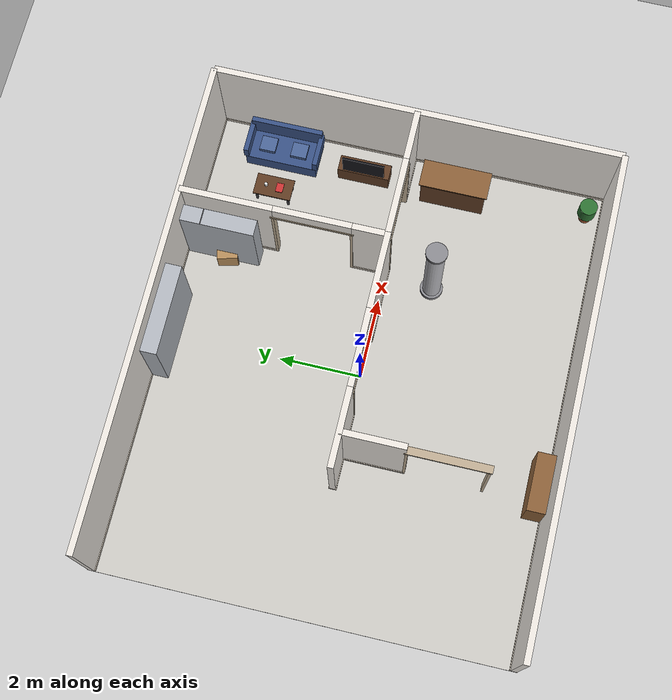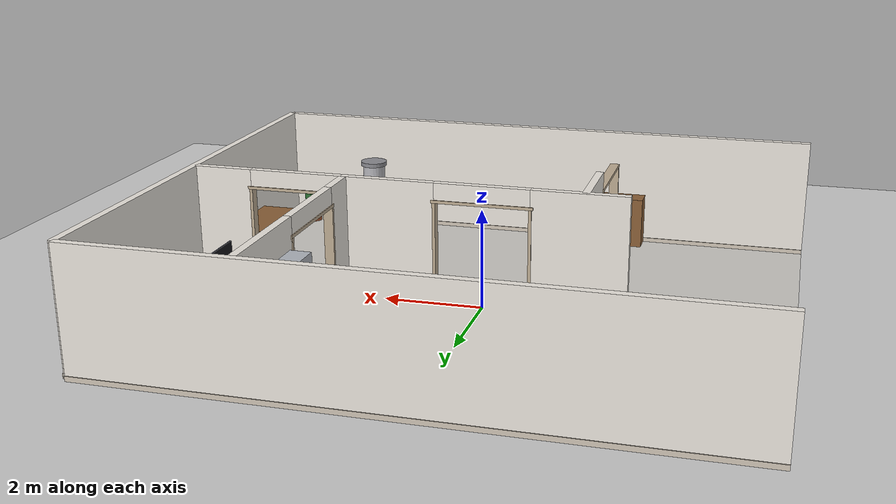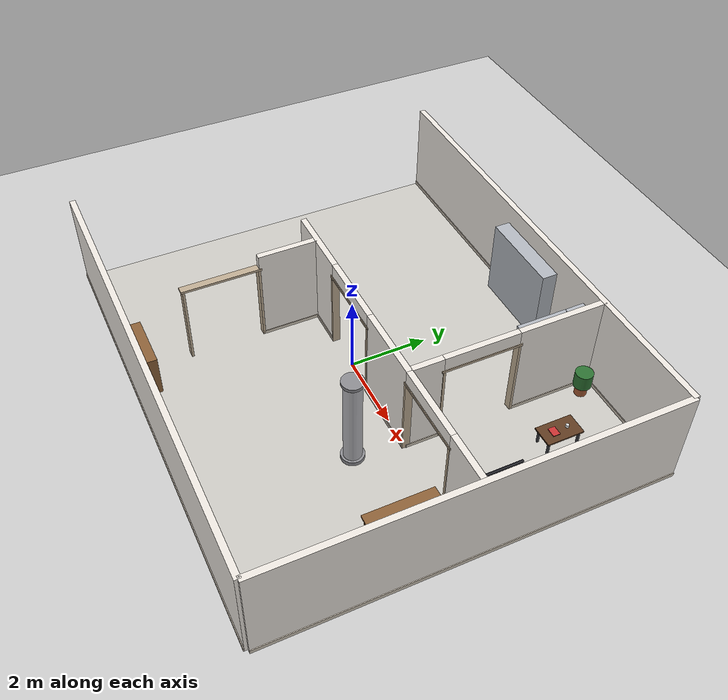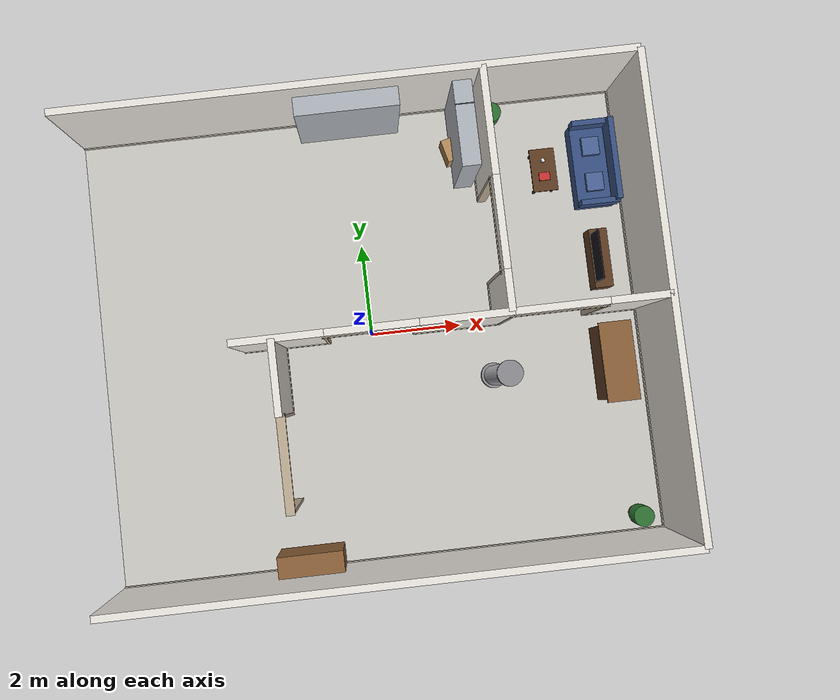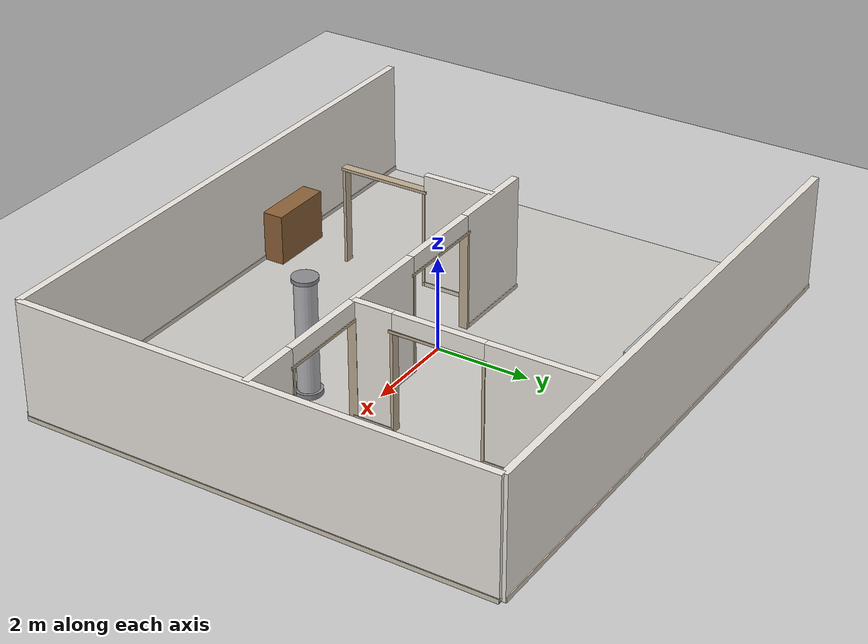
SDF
<sdf version="1.4">
 <world name="complex_indoor">
  <include><uri>model://sun</uri></include>
  <include><uri>model://ground_plane</uri></include>
  <model name="floor_tile">
   <static>true</static>
   <pose>0 0 0.005 0 0 0</pose>
   <link name="link">
    <collision name="collision"><geometry><box><size>12.0 10.0 0.01</size></box></geometry></collision>
    <visual name="visual">
     <geometry><box><size>12.0 10.0 0.01</size></box></geometry>
     <material>
      <ambient>0.80 0.79 0.77 1</ambient>
      <diffuse>0.80 0.79 0.77 1</diffuse>
      <specular>0.05 0.05 0.05 1</specular>
     </material>
    </visual>
   </link>
  </model>
  <model name="wall_north_0">
   <static>true</static>
   <pose>0.000 5.000 1.250 0 0 0.0000</pose>
   <link name="link">
    <collision name="collision"><geometry><box><size>12.000 0.150 2.500</size></box></geometry></collision>
    <visual name="visual">
     <geometry><box><size>12.000 0.150 2.500</size></box></geometry>
     <material>
      <ambient>0.93 0.91 0.88 1</ambient>
      <diffuse>0.93 0.91 0.88 1</diffuse>
      <specular>0.1 0.1 0.1 1</specular>
     </material>
    </visual>
   </link>
  </model>
  <model name="wall_north_base_0">
   <static>true</static>
   <pose>0.000 5.000 0.050 0 0 0.0000</pose>
   <link name="link">
    <collision name="collision"><geometry><box><size>12.000 0.190 0.100</size></box></geometry></collision>
    <visual name="visual">
     <geometry><box><size>12.000 0.190 0.100</size></box></geometry>
     <material>
      <ambient>0.82 0.78 0.72 1</ambient>
      <diffuse>0.82 0.78 0.72 1</diffuse>
      <specular>0.1 0.1 0.1 1</specular>
     </material>
    </visual>
   </link>
  </model>
  <model name="wall_south_0">
   <static>true</static>
   <pose>0.000 -5.000 1.250 0 0 0.0000</pose>
   <link name="link">
    <collision name="collision"><geometry><box><size>12.000 0.150 2.500</size></box></geometry></collision>
    <visual name="visual">
     <geometry><box><size>12.000 0.150 2.500</size></box></geometry>
     <material>
      <ambient>0.93 0.91 0.88 1</ambient>
      <diffuse>0.93 0.91 0.88 1</diffuse>
      <specular>0.1 0.1 0.1 1</specular>
     </material>
    </visual>
   </link>
  </model>
  <model name="wall_south_base_0">
   <static>true</static>
   <pose>0.000 -5.000 0.050 0 0 0.0000</pose>
   <link name="link">
    <collision name="collision"><geometry><box><size>12.000 0.190 0.100</size></box></geometry></collision>
    <visual name="visual">
     <geometry><box><size>12.000 0.190 0.100</size></box></geometry>
     <material>
      <ambient>0.82 0.78 0.72 1</ambient>
      <diffuse>0.82 0.78 0.72 1</diffuse>
      <specular>0.1 0.1 0.1 1</specular>
     </material>
    </visual>
   </link>
  </model>
  <model name="wall_east_0">
   <static>true</static>
   <pose>6.000 0.000 1.250 0 0 0.0000</pose>
   <link name="link">
    <collision name="collision"><geometry><box><size>0.150 10.000 2.500</size></box></geometry></collision>
    <visual name="visual">
     <geometry><box><size>0.150 10.000 2.500</size></box></geometry>
     <material>
      <ambient>0.93 0.91 0.88 1</ambient>
      <diffuse>0.93 0.91 0.88 1</diffuse>
      <specular>0.1 0.1 0.1 1</specular>
     </material>
    </visual>
   </link>
  </model>
  <model name="wall_east_base_0">
   <static>true</static>
   <pose>6.000 0.000 0.050 0 0 0.0000</pose>
   <link name="link">
    <collision name="collision"><geometry><box><size>0.190 10.000 0.100</size></box></geometry></collision>
    <visual name="visual">
     <geometry><box><size>0.190 10.000 0.100</size></box></geometry>
     <material>
      <ambient>0.82 0.78 0.72 1</ambient>
      <diffuse>0.82 0.78 0.72 1</diffuse>
      <specular>0.1 0.1 0.1 1</specular>
     </material>
    </visual>
   </link>
  </model>
  <model name="wall_split_2">
   <static>true</static>
   <pose>-1.900 0.000 1.250 0 0 0.0000</pose>
   <link name="link">
    <collision name="collision"><geometry><box><size>1.900 0.150 2.500</size></box></geometry></collision>
    <visual name="visual">
     <geometry><box><size>1.900 0.150 2.500</size></box></geometry>
     <material>
      <ambient>0.93 0.91 0.88 1</ambient>
      <diffuse>0.93 0.91 0.88 1</diffuse>
      <specular>0.1 0.1 0.1 1</specular>
     </material>
    </visual>
   </link>
  </model>
  <model name="wall_split_base_2">
   <static>true</static>
   <pose>-1.900 0.000 0.050 0 0 0.0000</pose>
   <link name="link">
    <collision name="collision"><geometry><box><size>1.900 0.190 0.100</size></box></geometry></collision>
    <visual name="visual">
     <geometry><box><size>1.900 0.190 0.100</size></box></geometry>
     <material>
      <ambient>0.82 0.78 0.72 1</ambient>
      <diffuse>0.82 0.78 0.72 1</diffuse>
      <specular>0.1 0.1 0.1 1</specular>
     </material>
    </visual>
   </link>
  </model>
  <model name="wall_split_lintel_3">
   <static>true</static>
   <pose>0.000 0.000 2.300 0 0 0.0000</pose>
   <link name="link">
    <collision name="collision"><geometry><box><size>1.900 0.150 0.400</size></box></geometry></collision>
    <visual name="visual">
     <geometry><box><size>1.900 0.150 0.400</size></box></geometry>
     <material>
      <ambient>0.93 0.91 0.88 1</ambient>
      <diffuse>0.93 0.91 0.88 1</diffuse>
      <specular>0.1 0.1 0.1 1</specular>
     </material>
    </visual>
   </link>
  </model>
  <model name="wall_split_frame_3_l">
   <static>true</static>
   <pose>-0.950 0.000 1.050 0 0 0.0000</pose>
   <link name="link">
    <collision name="collision"><geometry><box><size>0.060 0.190 2.100</size></box></geometry></collision>
    <visual name="visual">
     <geometry><box><size>0.060 0.190 2.100</size></box></geometry>
     <material>
      <ambient>0.75 0.68 0.58 1</ambient>
      <diffuse>0.75 0.68 0.58 1</diffuse>
      <specular>0.1 0.1 0.1 1</specular>
     </material>
    </visual>
   </link>
  </model>
  <model name="wall_split_frame_3_r">
   <static>true</static>
   <pose>0.950 0.000 1.050 0 0 0.0000</pose>
   <link name="link">
    <collision name="collision"><geometry><box><size>0.060 0.190 2.100</size></box></geometry></collision>
    <visual name="visual">
     <geometry><box><size>0.060 0.190 2.100</size></box></geometry>
     <material>
      <ambient>0.75 0.68 0.58 1</ambient>
      <diffuse>0.75 0.68 0.58 1</diffuse>
      <specular>0.1 0.1 0.1 1</specular>
     </material>
    </visual>
   </link>
  </model>
  <model name="wall_split_frame_3_t">
   <static>true</static>
   <pose>0.000 0.000 2.130 0 0 0.0000</pose>
   <link name="link">
    <collision name="collision"><geometry><box><size>2.020 0.190 0.060</size></box></geometry></collision>
    <visual name="visual">
     <geometry><box><size>2.020 0.190 0.060</size></box></geometry>
     <material>
      <ambient>0.75 0.68 0.58 1</ambient>
      <diffuse>0.75 0.68 0.58 1</diffuse>
      <specular>0.1 0.1 0.1 1</specular>
     </material>
    </visual>
   </link>
  </model>
  <model name="wall_split_4">
   <static>true</static>
   <pose>1.900 0.000 1.250 0 0 0.0000</pose>
   <link name="link">
    <collision name="collision"><geometry><box><size>1.900 0.150 2.500</size></box></geometry></collision>
    <visual name="visual">
     <geometry><box><size>1.900 0.150 2.500</size></box></geometry>
     <material>
      <ambient>0.93 0.91 0.88 1</ambient>
      <diffuse>0.93 0.91 0.88 1</diffuse>
      <specular>0.1 0.1 0.1 1</specular>
     </material>
    </visual>
   </link>
  </model>
  <model name="wall_split_base_4">
   <static>true</static>
   <pose>1.900 0.000 0.050 0 0 0.0000</pose>
   <link name="link">
    <collision name="collision"><geometry><box><size>1.900 0.190 0.100</size></box></geometry></collision>
    <visual name="visual">
     <geometry><box><size>1.900 0.190 0.100</size></box></geometry>
     <material>
      <ambient>0.82 0.78 0.72 1</ambient>
      <diffuse>0.82 0.78 0.72 1</diffuse>
      <specular>0.1 0.1 0.1 1</specular>
     </material>
    </visual>
   </link>
  </model>
  <model name="wall_split_lintel_5">
   <static>true</static>
   <pose>3.800 0.000 2.300 0 0 0.0000</pose>
   <link name="link">
    <collision name="collision"><geometry><box><size>1.900 0.150 0.400</size></box></geometry></collision>
    <visual name="visual">
     <geometry><box><size>1.900 0.150 0.400</size></box></geometry>
     <material>
      <ambient>0.93 0.91 0.88 1</ambient>
      <diffuse>0.93 0.91 0.88 1</diffuse>
      <specular>0.1 0.1 0.1 1</specular>
     </material>
    </visual>
   </link>
  </model>
  <model name="wall_split_frame_5_l">
   <static>true</static>
   <pose>2.850 0.000 1.050 0 0 0.0000</pose>
   <link name="link">
    <collision name="collision"><geometry><box><size>0.060 0.190 2.100</size></box></geometry></collision>
    <visual name="visual">
     <geometry><box><size>0.060 0.190 2.100</size></box></geometry>
     <material>
      <ambient>0.75 0.68 0.58 1</ambient>
      <diffuse>0.75 0.68 0.58 1</diffuse>
      <specular>0.1 0.1 0.1 1</specular>
     </material>
    </visual>
   </link>
  </model>
  <model name="wall_split_frame_5_r">
   <static>true</static>
   <pose>4.750 0.000 1.050 0 0 0.0000</pose>
   <link name="link">
    <collision name="collision"><geometry><box><size>0.060 0.190 2.100</size></box></geometry></collision>
    <visual name="visual">
     <geometry><box><size>0.060 0.190 2.100</size></box></geometry>
     <material>
      <ambient>0.75 0.68 0.58 1</ambient>
      <diffuse>0.75 0.68 0.58 1</diffuse>
      <specular>0.1 0.1 0.1 1</specular>
     </material>
    </visual>
   </link>
  </model>
  <model name="wall_split_frame_5_t">
   <static>true</static>
   <pose>3.800 0.000 2.130 0 0 0.0000</pose>
   <link name="link">
    <collision name="collision"><geometry><box><size>2.020 0.190 0.060</size></box></geometry></collision>
    <visual name="visual">
     <geometry><box><size>2.020 0.190 0.060</size></box></geometry>
     <material>
      <ambient>0.75 0.68 0.58 1</ambient>
      <diffuse>0.75 0.68 0.58 1</diffuse>
      <specular>0.1 0.1 0.1 1</specular>
     </material>
    </visual>
   </link>
  </model>
  <model name="wall_split_6">
   <static>true</static>
   <pose>5.375 0.000 1.250 0 0 0.0000</pose>
   <link name="link">
    <collision name="collision"><geometry><box><size>1.250 0.150 2.500</size></box></geometry></collision>
    <visual name="visual">
     <geometry><box><size>1.250 0.150 2.500</size></box></geometry>
     <material>
      <ambient>0.93 0.91 0.88 1</ambient>
      <diffuse>0.93 0.91 0.88 1</diffuse>
      <specular>0.1 0.1 0.1 1</specular>
     </material>
    </visual>
   </link>
  </model>
  <model name="wall_split_base_6">
   <static>true</static>
   <pose>5.375 0.000 0.050 0 0 0.0000</pose>
   <link name="link">
    <collision name="collision"><geometry><box><size>1.250 0.190 0.100</size></box></geometry></collision>
    <visual name="visual">
     <geometry><box><size>1.250 0.190 0.100</size></box></geometry>
     <material>
      <ambient>0.82 0.78 0.72 1</ambient>
      <diffuse>0.82 0.78 0.72 1</diffuse>
      <specular>0.1 0.1 0.1 1</specular>
     </material>
    </visual>
   </link>
  </model>
  <model name="wall_north_div2_0">
   <static>true</static>
   <pose>2.800 0.425 1.250 0 0 0.0000</pose>
   <link name="link">
    <collision name="collision"><geometry><box><size>0.150 0.850 2.500</size></box></geometry></collision>
    <visual name="visual">
     <geometry><box><size>0.150 0.850 2.500</size></box></geometry>
     <material>
      <ambient>0.93 0.91 0.88 1</ambient>
      <diffuse>0.93 0.91 0.88 1</diffuse>
      <specular>0.1 0.1 0.1 1</specular>
     </material>
    </visual>
   </link>
  </model>
  <model name="wall_north_div2_base_0">
   <static>true</static>
   <pose>2.800 0.425 0.050 0 0 0.0000</pose>
   <link name="link">
    <collision name="collision"><geometry><box><size>0.190 0.850 0.100</size></box></geometry></collision>
    <visual name="visual">
     <geometry><box><size>0.190 0.850 0.100</size></box></geometry>
     <material>
      <ambient>0.82 0.78 0.72 1</ambient>
      <diffuse>0.82 0.78 0.72 1</diffuse>
      <specular>0.1 0.1 0.1 1</specular>
     </material>
    </visual>
   </link>
  </model>
  <model name="wall_north_div2_lintel_1">
   <static>true</static>
   <pose>2.800 1.800 2.300 0 0 0.0000</pose>
   <link name="link">
    <collision name="collision"><geometry><box><size>0.150 1.900 0.400</size></box></geometry></collision>
    <visual name="visual">
     <geometry><box><size>0.150 1.900 0.400</size></box></geometry>
     <material>
      <ambient>0.93 0.91 0.88 1</ambient>
      <diffuse>0.93 0.91 0.88 1</diffuse>
      <specular>0.1 0.1 0.1 1</specular>
     </material>
    </visual>
   </link>
  </model>
  <model name="wall_north_div2_frame_1_b">
   <static>true</static>
   <pose>2.800 0.850 1.050 0 0 0.0000</pose>
   <link name="link">
    <collision name="collision"><geometry><box><size>0.190 0.060 2.100</size></box></geometry></collision>
    <visual name="visual">
     <geometry><box><size>0.190 0.060 2.100</size></box></geometry>
     <material>
      <ambient>0.75 0.68 0.58 1</ambient>
      <diffuse>0.75 0.68 0.58 1</diffuse>
      <specular>0.1 0.1 0.1 1</specular>
     </material>
    </visual>
   </link>
  </model>
  <model name="wall_north_div2_frame_1_t">
   <static>true</static>
   <pose>2.800 2.750 1.050 0 0 0.0000</pose>
   <link name="link">
    <collision name="collision"><geometry><box><size>0.190 0.060 2.100</size></box></geometry></collision>
    <visual name="visual">
     <geometry><box><size>0.190 0.060 2.100</size></box></geometry>
     <material>
      <ambient>0.75 0.68 0.58 1</ambient>
      <diffuse>0.75 0.68 0.58 1</diffuse>
      <specular>0.1 0.1 0.1 1</specular>
     </material>
    </visual>
   </link>
  </model>
  <model name="wall_north_div2_frame_1_top">
   <static>true</static>
   <pose>2.800 1.800 2.130 0 0 0.0000</pose>
   <link name="link">
    <collision name="collision"><geometry><box><size>0.190 2.020 0.060</size></box></geometry></collision>
    <visual name="visual">
     <geometry><box><size>0.190 2.020 0.060</size></box></geometry>
     <material>
      <ambient>0.75 0.68 0.58 1</ambient>
      <diffuse>0.75 0.68 0.58 1</diffuse>
      <specular>0.1 0.1 0.1 1</specular>
     </material>
    </visual>
   </link>
  </model>
  <model name="wall_north_div2_2">
   <static>true</static>
   <pose>2.800 3.875 1.250 0 0 0.0000</pose>
   <link name="link">
    <collision name="collision"><geometry><box><size>0.150 2.250 2.500</size></box></geometry></collision>
    <visual name="visual">
     <geometry><box><size>0.150 2.250 2.500</size></box></geometry>
     <material>
      <ambient>0.93 0.91 0.88 1</ambient>
      <diffuse>0.93 0.91 0.88 1</diffuse>
      <specular>0.1 0.1 0.1 1</specular>
     </material>
    </visual>
   </link>
  </model>
  <model name="wall_north_div2_base_2">
   <static>true</static>
   <pose>2.800 3.875 0.050 0 0 0.0000</pose>
   <link name="link">
    <collision name="collision"><geometry><box><size>0.190 2.250 0.100</size></box></geometry></collision>
    <visual name="visual">
     <geometry><box><size>0.190 2.250 0.100</size></box></geometry>
     <material>
      <ambient>0.82 0.78 0.72 1</ambient>
      <diffuse>0.82 0.78 0.72 1</diffuse>
      <specular>0.1 0.1 0.1 1</specular>
     </material>
    </visual>
   </link>
  </model>
  <model name="wall_south_div_frame_1_b">
   <static>true</static>
   <pose>-2.000 -3.450 1.050 0 0 0.0000</pose>
   <link name="link">
    <collision name="collision"><geometry><box><size>0.190 0.060 2.100</size></box></geometry></collision>
    <visual name="visual">
     <geometry><box><size>0.190 0.060 2.100</size></box></geometry>
     <material>
      <ambient>0.75 0.68 0.58 1</ambient>
      <diffuse>0.75 0.68 0.58 1</diffuse>
      <specular>0.1 0.1 0.1 1</specular>
     </material>
    </visual>
   </link>
  </model>
  <model name="wall_south_div_frame_1_t">
   <static>true</static>
   <pose>-2.000 -1.550 1.050 0 0 0.0000</pose>
   <link name="link">
    <collision name="collision"><geometry><box><size>0.190 0.060 2.100</size></box></geometry></collision>
    <visual name="visual">
     <geometry><box><size>0.190 0.060 2.100</size></box></geometry>
     <material>
      <ambient>0.75 0.68 0.58 1</ambient>
      <diffuse>0.75 0.68 0.58 1</diffuse>
      <specular>0.1 0.1 0.1 1</specular>
     </material>
    </visual>
   </link>
  </model>
  <model name="wall_south_div_frame_1_top">
   <static>true</static>
   <pose>-2.000 -2.500 2.130 0 0 0.0000</pose>
   <link name="link">
    <collision name="collision"><geometry><box><size>0.190 2.020 0.060</size></box></geometry></collision>
    <visual name="visual">
     <geometry><box><size>0.190 2.020 0.060</size></box></geometry>
     <material>
      <ambient>0.75 0.68 0.58 1</ambient>
      <diffuse>0.75 0.68 0.58 1</diffuse>
      <specular>0.1 0.1 0.1 1</specular>
     </material>
    </visual>
   </link>
  </model>
  <model name="wall_south_div_2">
   <static>true</static>
   <pose>-2.000 -0.775 1.250 0 0 0.0000</pose>
   <link name="link">
    <collision name="collision"><geometry><box><size>0.150 1.550 2.500</size></box></geometry></collision>
    <visual name="visual">
     <geometry><box><size>0.150 1.550 2.500</size></box></geometry>
     <material>
      <ambient>0.93 0.91 0.88 1</ambient>
      <diffuse>0.93 0.91 0.88 1</diffuse>
      <specular>0.1 0.1 0.1 1</specular>
     </material>
    </visual>
   </link>
  </model>
  <model name="wall_south_div_base_2">
   <static>true</static>
   <pose>-2.000 -0.775 0.050 0 0 0.0000</pose>
   <link name="link">
    <collision name="collision"><geometry><box><size>0.190 1.550 0.100</size></box></geometry></collision>
    <visual name="visual">
     <geometry><box><size>0.190 1.550 0.100</size></box></geometry>
     <material>
      <ambient>0.82 0.78 0.72 1</ambient>
      <diffuse>0.82 0.78 0.72 1</diffuse>
      <specular>0.1 0.1 0.1 1</specular>
     </material>
    </visual>
   </link>
  </model>
  <model name="rack_c_right">
   <static>true</static>
   <pose>2.420 4.000 1.000 0 0 0.0000</pose>
   <link name="link">
    <collision name="collision"><geometry><box><size>0.400 1.800 2.000</size></box></geometry></collision>
    <visual name="visual">
     <geometry><box><size>0.400 1.800 2.000</size></box></geometry>
     <material>
      <ambient>0.70 0.72 0.75 1</ambient>
      <diffuse>0.70 0.72 0.75 1</diffuse>
      <specular>0.1 0.1 0.1 1</specular>
     </material>
    </visual>
   </link>
  </model>
  <model name="rack_c_right_s1">
   <static>true</static>
   <pose>2.420 3.600 0.550 0 0 0.0000</pose>
   <link name="link">
    <collision name="collision"><geometry><box><size>0.380 0.020 1.900</size></box></geometry></collision>
    <visual name="visual">
     <geometry><box><size>0.380 0.020 1.900</size></box></geometry>
     <material>
      <ambient>0.28 0.28 0.30 1</ambient>
      <diffuse>0.28 0.28 0.30 1</diffuse>
      <specular>0.1 0.1 0.1 1</specular>
     </material>
    </visual>
   </link>
  </model>
  <model name="rack_c_right_s2">
   <static>true</static>
   <pose>2.420 4.400 1.050 0 0 0.0000</pose>
   <link name="link">
    <collision name="collision"><geometry><box><size>0.380 0.020 1.900</size></box></geometry></collision>
    <visual name="visual">
     <geometry><box><size>0.380 0.020 1.900</size></box></geometry>
     <material>
      <ambient>0.28 0.28 0.30 1</ambient>
      <diffuse>0.28 0.28 0.30 1</diffuse>
      <specular>0.1 0.1 0.1 1</specular>
     </material>
    </visual>
   </link>
  </model>
  <model name="box_c_r1">
   <static>true</static>
   <pose>2.420 3.800 0.680 0 0 0.0000</pose>
   <link name="link">
    <collision name="collision"><geometry><box><size>0.320 0.360 0.240</size></box></geometry></collision>
    <visual name="visual">
     <geometry><box><size>0.320 0.360 0.240</size></box></geometry>
     <material>
      <ambient>0.72 0.56 0.36 1</ambient>
      <diffuse>0.72 0.56 0.36 1</diffuse>
      <specular>0.1 0.1 0.1 1</specular>
     </material>
    </visual>
   </link>
  </model>
  <model name="box_c_r2">
   <static>true</static>
   <pose>2.420 4.200 1.180 0 0 0.0000</pose>
   <link name="link">
    <collision name="collision"><geometry><box><size>0.320 0.360 0.240</size></box></geometry></collision>
    <visual name="visual">
     <geometry><box><size>0.320 0.360 0.240</size></box></geometry>
     <material>
      <ambient>0.70 0.55 0.35 1</ambient>
      <diffuse>0.70 0.55 0.35 1</diffuse>
      <specular>0.1 0.1 0.1 1</specular>
     </material>
    </visual>
   </link>
  </model>
  <model name="rack_c_back">
   <static>true</static>
   <pose>0.000 4.720 1.000 0 0 0.0000</pose>
   <link name="link">
    <collision name="collision"><geometry><box><size>2.200 0.400 2.000</size></box></geometry></collision>
    <visual name="visual">
     <geometry><box><size>2.200 0.400 2.000</size></box></geometry>
     <material>
      <ambient>0.70 0.72 0.75 1</ambient>
      <diffuse>0.70 0.72 0.75 1</diffuse>
      <specular>0.1 0.1 0.1 1</specular>
     </material>
    </visual>
   </link>
  </model>
  <model name="rack_c_back_s1">
   <static>true</static>
   <pose>0.000 4.720 0.900 0 0 0.0000</pose>
   <link name="link">
    <collision name="collision"><geometry><box><size>2.160 0.380 0.020</size></box></geometry></collision>
    <visual name="visual">
     <geometry><box><size>2.160 0.380 0.020</size></box></geometry>
     <material>
      <ambient>0.28 0.28 0.30 1</ambient>
      <diffuse>0.28 0.28 0.30 1</diffuse>
      <specular>0.1 0.1 0.1 1</specular>
     </material>
    </visual>
   </link>
  </model>
  <model name="crate_c_corner">
   <static>true</static>
   <pose>2.300 3.900 0.250 0 0 0.2500</pose>
   <link name="link">
    <collision name="collision"><geometry><box><size>0.500 0.500 0.500</size></box></geometry></collision>
    <visual name="visual">
     <geometry><box><size>0.500 0.500 0.500</size></box></geometry>
     <material>
      <ambient>0.72 0.56 0.36 1</ambient>
      <diffuse>0.72 0.56 0.36 1</diffuse>
      <specular>0.1 0.1 0.1 1</specular>
     </material>
    </visual>
   </link>
  </model>
  <model name="sofa_b_seat">
   <static>true</static>
   <pose>5.300 3.200 0.210 0 0 0.0000</pose>
   <link name="link">
    <collision name="collision"><geometry><box><size>0.850 1.800 0.420</size></box></geometry></collision>
    <visual name="visual">
     <geometry><box><size>0.850 1.800 0.420</size></box></geometry>
     <material>
      <ambient>0.22 0.32 0.52 1</ambient>
      <diffuse>0.22 0.32 0.52 1</diffuse>
      <specular>0.1 0.1 0.1 1</specular>
     </material>
    </visual>
   </link>
  </model>
  <model name="sofa_b_back">
   <static>true</static>
   <pose>5.680 3.200 0.670 0 0 0.0000</pose>
   <link name="link">
    <collision name="collision"><geometry><box><size>0.120 1.800 0.500</size></box></geometry></collision>
    <visual name="visual">
     <geometry><box><size>0.120 1.800 0.500</size></box></geometry>
     <material>
      <ambient>0.22 0.32 0.52 1</ambient>
      <diffuse>0.22 0.32 0.52 1</diffuse>
      <specular>0.1 0.1 0.1 1</specular>
     </material>
    </visual>
   </link>
  </model>
  <model name="sofa_b_arm_l">
   <static>true</static>
   <pose>5.300 2.320 0.580 0 0 0.0000</pose>
   <link name="link">
    <collision name="collision"><geometry><box><size>0.850 0.120 0.320</size></box></geometry></collision>
    <visual name="visual">
     <geometry><box><size>0.850 0.120 0.320</size></box></geometry>
     <material>
      <ambient>0.22 0.32 0.52 1</ambient>
      <diffuse>0.22 0.32 0.52 1</diffuse>
      <specular>0.1 0.1 0.1 1</specular>
     </material>
    </visual>
   </link>
  </model>
  <model name="sofa_b_arm_r">
   <static>true</static>
   <pose>5.300 4.080 0.580 0 0 0.0000</pose>
   <link name="link">
    <collision name="collision"><geometry><box><size>0.850 0.120 0.320</size></box></geometry></collision>
    <visual name="visual">
     <geometry><box><size>0.850 0.120 0.320</size></box></geometry>
     <material>
      <ambient>0.22 0.32 0.52 1</ambient>
      <diffuse>0.22 0.32 0.52 1</diffuse>
      <specular>0.1 0.1 0.1 1</specular>
     </material>
    </visual>
   </link>
  </model>
  <model name="cushion_b1">
   <static>true</static>
   <pose>5.280 2.800 0.470 0 0 0.0000</pose>
   <link name="link">
    <collision name="collision"><geometry><box><size>0.380 0.400 0.100</size></box></geometry></collision>
    <visual name="visual">
     <geometry><box><size>0.380 0.400 0.100</size></box></geometry>
     <material>
      <ambient>0.30 0.40 0.60 1</ambient>
      <diffuse>0.30 0.40 0.60 1</diffuse>
      <specular>0.1 0.1 0.1 1</specular>
     </material>
    </visual>
   </link>
  </model>
  <model name="cushion_b2">
   <static>true</static>
   <pose>5.280 3.600 0.470 0 0 0.0000</pose>
   <link name="link">
    <collision name="collision"><geometry><box><size>0.380 0.400 0.100</size></box></geometry></collision>
    <visual name="visual">
     <geometry><box><size>0.380 0.400 0.100</size></box></geometry>
     <material>
      <ambient>0.30 0.40 0.60 1</ambient>
      <diffuse>0.30 0.40 0.60 1</diffuse>
      <specular>0.1 0.1 0.1 1</specular>
     </material>
    </visual>
   </link>
  </model>
  <model name="table_b_top">
   <static>true</static>
   <pose>4.200 3.200 0.420 0 0 0.0000</pose>
   <link name="link">
    <collision name="collision"><geometry><box><size>0.550 0.950 0.040</size></box></geometry></collision>
    <visual name="visual">
     <geometry><box><size>0.550 0.950 0.040</size></box></geometry>
     <material>
      <ambient>0.38 0.24 0.14 1</ambient>
      <diffuse>0.38 0.24 0.14 1</diffuse>
      <specular>0.1 0.1 0.1 1</specular>
     </material>
    </visual>
   </link>
  </model>
  <model name="table_b_leg_1">
   <static>true</static>
   <pose>4.000 2.800 0.200 0 0 0.0000</pose>
   <link name="link">
    <collision name="collision"><geometry><box><size>0.050 0.050 0.400</size></box></geometry></collision>
    <visual name="visual">
     <geometry><box><size>0.050 0.050 0.400</size></box></geometry>
     <material>
      <ambient>0.28 0.28 0.30 1</ambient>
      <diffuse>0.28 0.28 0.30 1</diffuse>
      <specular>0.1 0.1 0.1 1</specular>
     </material>
    </visual>
   </link>
  </model>
  <model name="table_b_leg_2">
   <static>true</static>
   <pose>4.400 2.800 0.200 0 0 0.0000</pose>
   <link name="link">
    <collision name="collision"><geometry><box><size>0.050 0.050 0.400</size></box></geometry></collision>
    <visual name="visual">
     <geometry><box><size>0.050 0.050 0.400</size></box></geometry>
     <material>
      <ambient>0.28 0.28 0.30 1</ambient>
      <diffuse>0.28 0.28 0.30 1</diffuse>
      <specular>0.1 0.1 0.1 1</specular>
     </material>
    </visual>
   </link>
  </model>
  <model name="table_b_leg_3">
   <static>true</static>
   <pose>4.000 3.600 0.200 0 0 0.0000</pose>
   <link name="link">
    <collision name="collision"><geometry><box><size>0.050 0.050 0.400</size></box></geometry></collision>
    <visual name="visual">
     <geometry><box><size>0.050 0.050 0.400</size></box></geometry>
     <material>
      <ambient>0.28 0.28 0.30 1</ambient>
      <diffuse>0.28 0.28 0.30 1</diffuse>
      <specular>0.1 0.1 0.1 1</specular>
     </material>
    </visual>
   </link>
  </model>
  <model name="table_b_leg_4">
   <static>true</static>
   <pose>4.400 3.600 0.200 0 0 0.0000</pose>
   <link name="link">
    <collision name="collision"><geometry><box><size>0.050 0.050 0.400</size></box></geometry></collision>
    <visual name="visual">
     <geometry><box><size>0.050 0.050 0.400</size></box></geometry>
     <material>
      <ambient>0.28 0.28 0.30 1</ambient>
      <diffuse>0.28 0.28 0.30 1</diffuse>
      <specular>0.1 0.1 0.1 1</specular>
     </material>
    </visual>
   </link>
  </model>
  <model name="magazine_b">
   <static>true</static>
   <pose>4.200 3.050 0.450 0 0 0.0000</pose>
   <link name="link">
    <collision name="collision"><geometry><box><size>0.240 0.180 0.020</size></box></geometry></collision>
    <visual name="visual">
     <geometry><box><size>0.240 0.180 0.020</size></box></geometry>
     <material>
      <ambient>0.80 0.20 0.20 1</ambient>
      <diffuse>0.80 0.20 0.20 1</diffuse>
      <specular>0.1 0.1 0.1 1</specular>
     </material>
    </visual>
   </link>
  </model>
  <model name="cup_b">
   <static>true</static>
   <pose>4.200 3.400 0.470 0 0 0</pose>
   <link name="link">
    <collision name="collision">
     <geometry><cylinder><radius>0.040</radius><length>0.100</length></cylinder></geometry>
    </collision>
    <visual name="visual">
     <geometry><cylinder><radius>0.040</radius><length>0.100</length></cylinder></geometry>
     <material>
      <ambient>0.95 0.95 0.95 1</ambient>
      <diffuse>0.95 0.95 0.95 1</diffuse>
      <specular>0.15 0.15 0.15 1</specular>
     </material>
    </visual>
   </link>
  </model>
  <model name="tvstand_b">
   <static>true</static>
   <pose>5.200 1.100 0.250 0 0 0.0000</pose>
   <link name="link">
    <collision name="collision"><geometry><box><size>0.400 1.300 0.500</size></box></geometry></collision>
    <visual name="visual">
     <geometry><box><size>0.400 1.300 0.500</size></box></geometry>
     <material>
      <ambient>0.38 0.24 0.14 1</ambient>
      <diffuse>0.38 0.24 0.14 1</diffuse>
      <specular>0.1 0.1 0.1 1</specular>
     </material>
    </visual>
   </link>
  </model>
  <model name="tv_b_screen">
   <static>true</static>
   <pose>5.030 1.100 0.850 0 0 0.0000</pose>
   <link name="link">
    <collision name="collision"><geometry><box><size>0.040 1.050 0.600</size></box></geometry></collision>
    <visual name="visual">
     <geometry><box><size>0.040 1.050 0.600</size></box></geometry>
     <material>
      <ambient>0.08 0.08 0.10 1</ambient>
      <diffuse>0.08 0.08 0.10 1</diffuse>
      <specular>0.1 0.1 0.1 1</specular>
     </material>
    </visual>
   </link>
  </model>
  <model name="tv_b_stand">
   <static>true</static>
   <pose>5.090 1.100 0.600 0 0 0.0000</pose>
   <link name="link">
    <collision name="collision"><geometry><box><size>0.060 0.200 0.150</size></box></geometry></collision>
    <visual name="visual">
     <geometry><box><size>0.060 0.200 0.150</size></box></geometry>
     <material>
      <ambient>0.28 0.28 0.30 1</ambient>
      <diffuse>0.28 0.28 0.30 1</diffuse>
      <specular>0.1 0.1 0.1 1</specular>
     </material>
    </visual>
   </link>
  </model>
  <model name="pot_b">
   <static>true</static>
   <pose>3.150 4.550 0.150 0 0 0</pose>
   <link name="link">
    <collision name="collision">
     <geometry><cylinder><radius>0.150</radius><length>0.300</length></cylinder></geometry>
    </collision>
    <visual name="visual">
     <geometry><cylinder><radius>0.150</radius><length>0.300</length></cylinder></geometry>
     <material>
      <ambient>0.65 0.35 0.20 1</ambient>
      <diffuse>0.65 0.35 0.20 1</diffuse>
      <specular>0.15 0.15 0.15 1</specular>
     </material>
    </visual>
   </link>
  </model>
  <model name="plant_b">
   <static>true</static>
   <pose>3.150 4.550 0.500 0 0 0</pose>
   <link name="link">
    <collision name="collision">
     <geometry><cylinder><radius>0.220</radius><length>0.400</length></cylinder></geometry>
    </collision>
    <visual name="visual">
     <geometry><cylinder><radius>0.220</radius><length>0.400</length></cylinder></geometry>
     <material>
      <ambient>0.18 0.45 0.20 1</ambient>
      <diffuse>0.18 0.45 0.20 1</diffuse>
      <specular>0.15 0.15 0.15 1</specular>
     </material>
    </visual>
   </link>
  </model>
  <model name="pillar_2_base">
   <static>true</static>
   <pose>2.600 -1.200 0.060 0 0 0</pose>
   <link name="link">
    <collision name="collision">
     <geometry><cylinder><radius>0.280</radius><length>0.120</length></cylinder></geometry>
    </collision>
    <visual name="visual">
     <geometry><cylinder><radius>0.280</radius><length>0.120</length></cylinder></geometry>
     <material>
      <ambient>0.55 0.55 0.57 1</ambient>
      <diffuse>0.55 0.55 0.57 1</diffuse>
      <specular>0.15 0.15 0.15 1</specular>
     </material>
    </visual>
   </link>
  </model>
  <model name="pillar_2_shaft">
   <static>true</static>
   <pose>2.600 -1.200 1.270 0 0 0</pose>
   <link name="link">
    <collision name="collision">
     <geometry><cylinder><radius>0.220</radius><length>2.300</length></cylinder></geometry>
    </collision>
    <visual name="visual">
     <geometry><cylinder><radius>0.220</radius><length>2.300</length></cylinder></geometry>
     <material>
      <ambient>0.72 0.72 0.74 1</ambient>
      <diffuse>0.72 0.72 0.74 1</diffuse>
      <specular>0.15 0.15 0.15 1</specular>
     </material>
    </visual>
   </link>
  </model>
  <model name="pillar_2_cap">
   <static>true</static>
   <pose>2.600 -1.200 2.460 0 0 0</pose>
   <link name="link">
    <collision name="collision">
     <geometry><cylinder><radius>0.260</radius><length>0.080</length></cylinder></geometry>
    </collision>
    <visual name="visual">
     <geometry><cylinder><radius>0.260</radius><length>0.080</length></cylinder></geometry>
     <material>
      <ambient>0.55 0.55 0.57 1</ambient>
      <diffuse>0.55 0.55 0.57 1</diffuse>
      <specular>0.15 0.15 0.15 1</specular>
     </material>
    </visual>
   </link>
  </model>
  <model name="reception_desk">
   <static>true</static>
   <pose>5.150 -1.200 0.525 0 0 0.0000</pose>
   <link name="link">
    <collision name="collision"><geometry><box><size>0.600 1.600 1.050</size></box></geometry></collision>
    <visual name="visual">
     <geometry><box><size>0.600 1.600 1.050</size></box></geometry>
     <material>
      <ambient>0.38 0.24 0.14 1</ambient>
      <diffuse>0.38 0.24 0.14 1</diffuse>
      <specular>0.1 0.1 0.1 1</specular>
     </material>
    </visual>
   </link>
  </model>
  <model name="reception_desk_top">
   <static>true</static>
   <pose>5.150 -1.200 1.050 0 0 0.0000</pose>
   <link name="link">
    <collision name="collision"><geometry><box><size>0.700 1.700 0.040</size></box></geometry></collision>
    <visual name="visual">
     <geometry><box><size>0.700 1.700 0.040</size></box></geometry>
     <material>
      <ambient>0.55 0.38 0.22 1</ambient>
      <diffuse>0.55 0.38 0.22 1</diffuse>
      <specular>0.1 0.1 0.1 1</specular>
     </material>
    </visual>
   </link>
  </model>
  <model name="cabinet_south">
   <static>true</static>
   <pose>-1.800 -4.700 0.550 0 0 0.0000</pose>
   <link name="link">
    <collision name="collision"><geometry><box><size>1.400 0.450 1.100</size></box></geometry></collision>
    <visual name="visual">
     <geometry><box><size>1.400 0.450 1.100</size></box></geometry>
     <material>
      <ambient>0.55 0.38 0.22 1</ambient>
      <diffuse>0.55 0.38 0.22 1</diffuse>
      <specular>0.1 0.1 0.1 1</specular>
     </material>
    </visual>
   </link>
  </model>
  <model name="pot_hall_2">
   <static>true</static>
   <pose>5.350 -4.550 0.150 0 0 0</pose>
   <link name="link">
    <collision name="collision">
     <geometry><cylinder><radius>0.150</radius><length>0.300</length></cylinder></geometry>
    </collision>
    <visual name="visual">
     <geometry><cylinder><radius>0.150</radius><length>0.300</length></cylinder></geometry>
     <material>
      <ambient>0.65 0.35 0.20 1</ambient>
      <diffuse>0.65 0.35 0.20 1</diffuse>
      <specular>0.15 0.15 0.15 1</specular>
     </material>
    </visual>
   </link>
  </model>
  <model name="plant_hall_2">
   <static>true</static>
   <pose>5.350 -4.550 0.500 0 0 0</pose>
   <link name="link">
    <collision name="collision">
     <geometry><cylinder><radius>0.220</radius><length>0.400</length></cylinder></geometry>
    </collision>
    <visual name="visual">
     <geometry><cylinder><radius>0.220</radius><length>0.400</length></cylinder></geometry>
     <material>
      <ambient>0.18 0.45 0.20 1</ambient>
      <diffuse>0.18 0.45 0.20 1</diffuse>
      <specular>0.15 0.15 0.15 1</specular>
     </material>
    </visual>
   </link>
  </model>
 </world>
</sdf>
